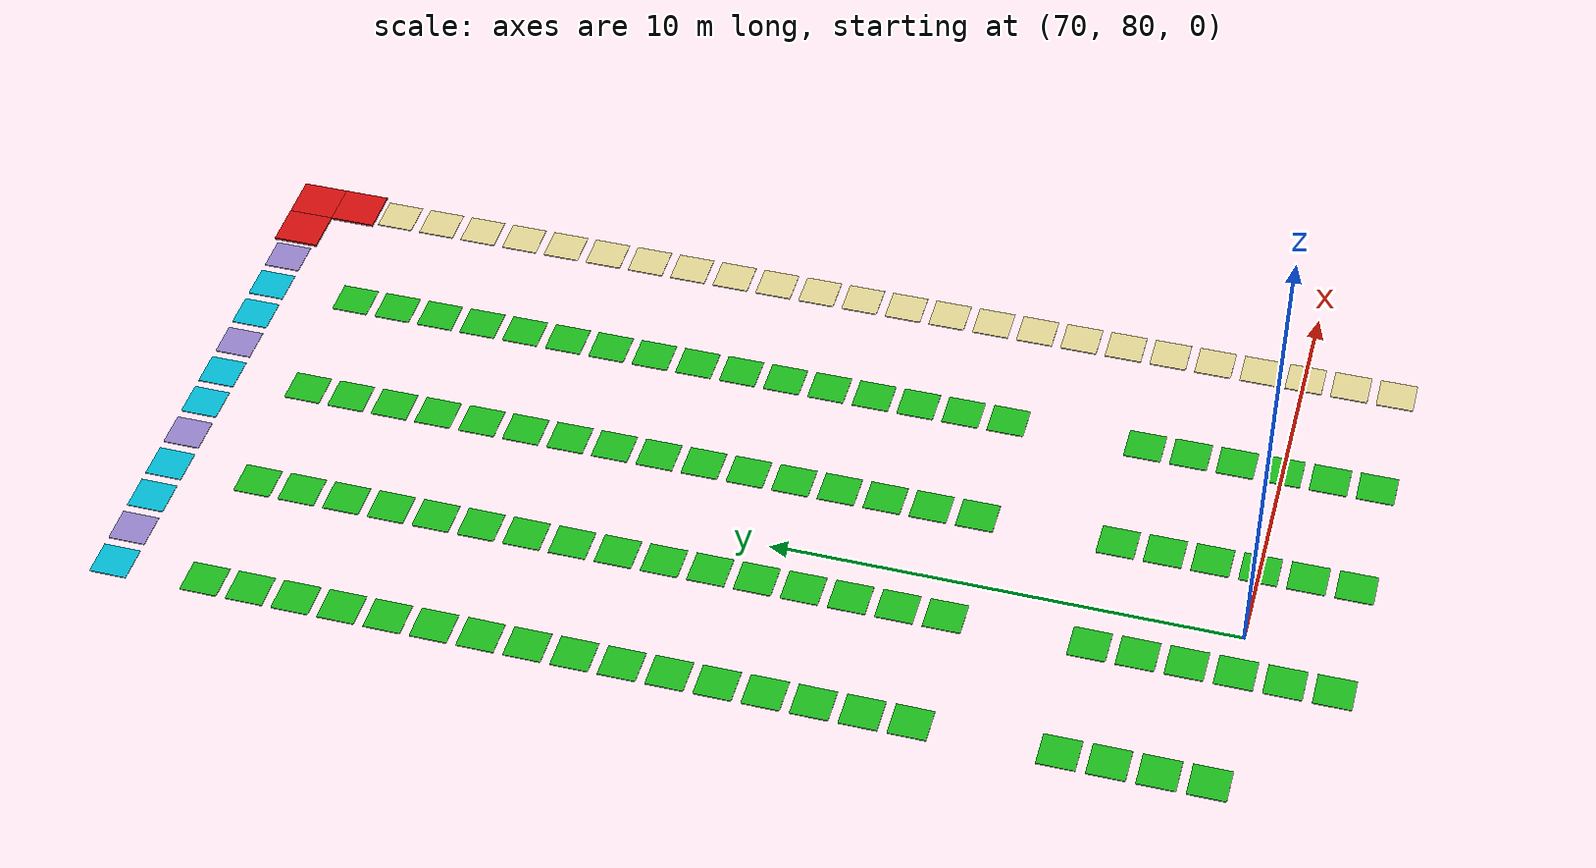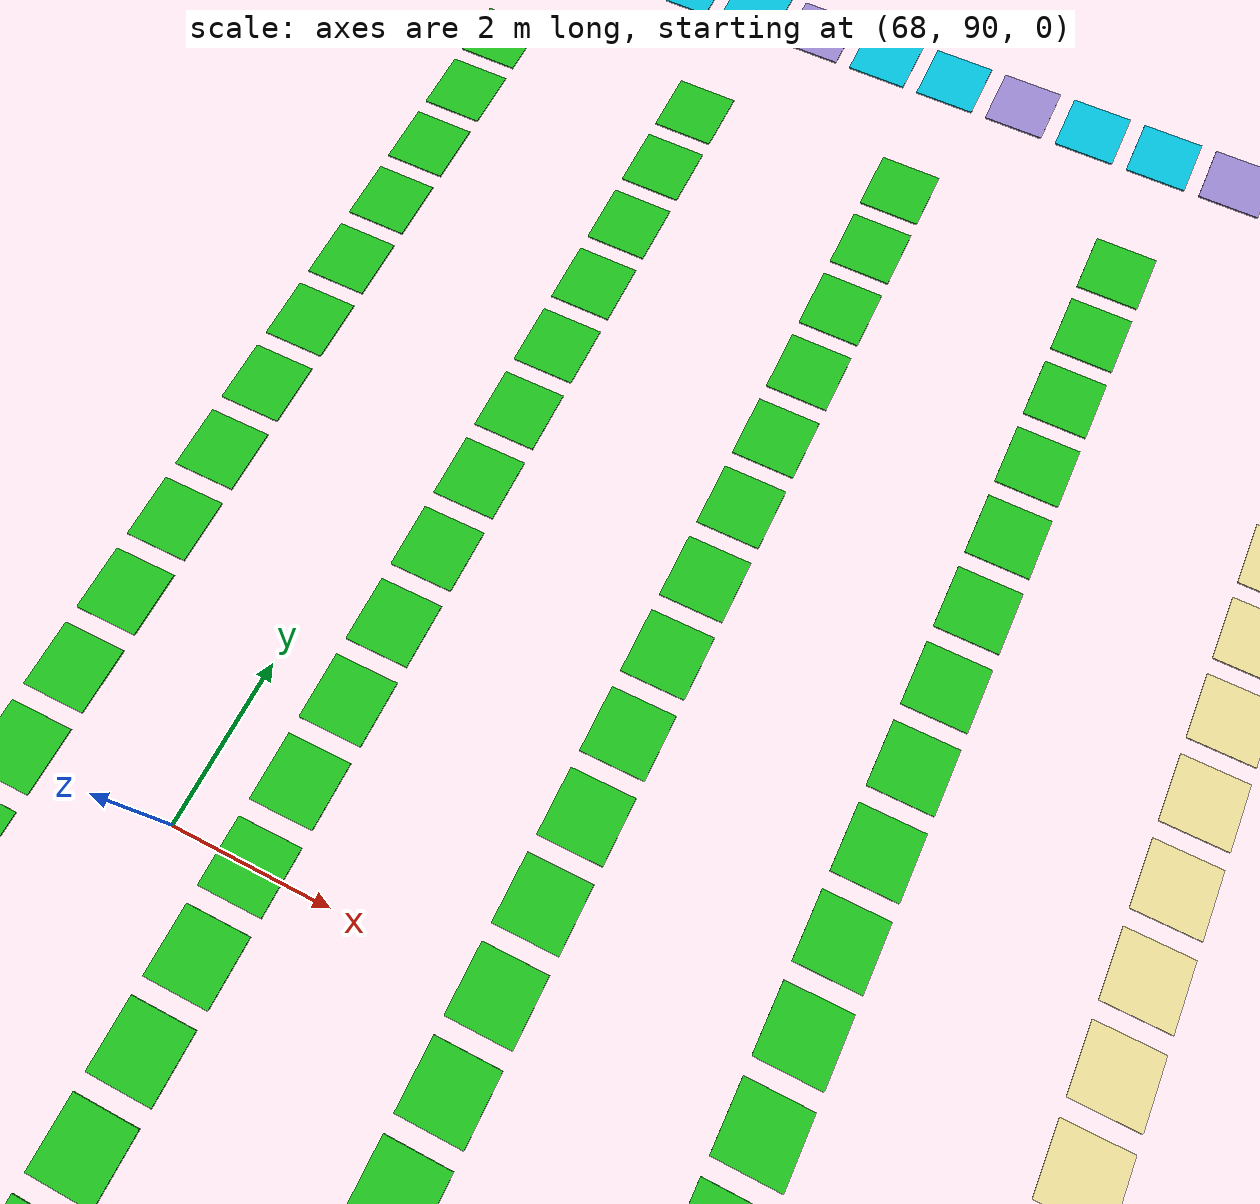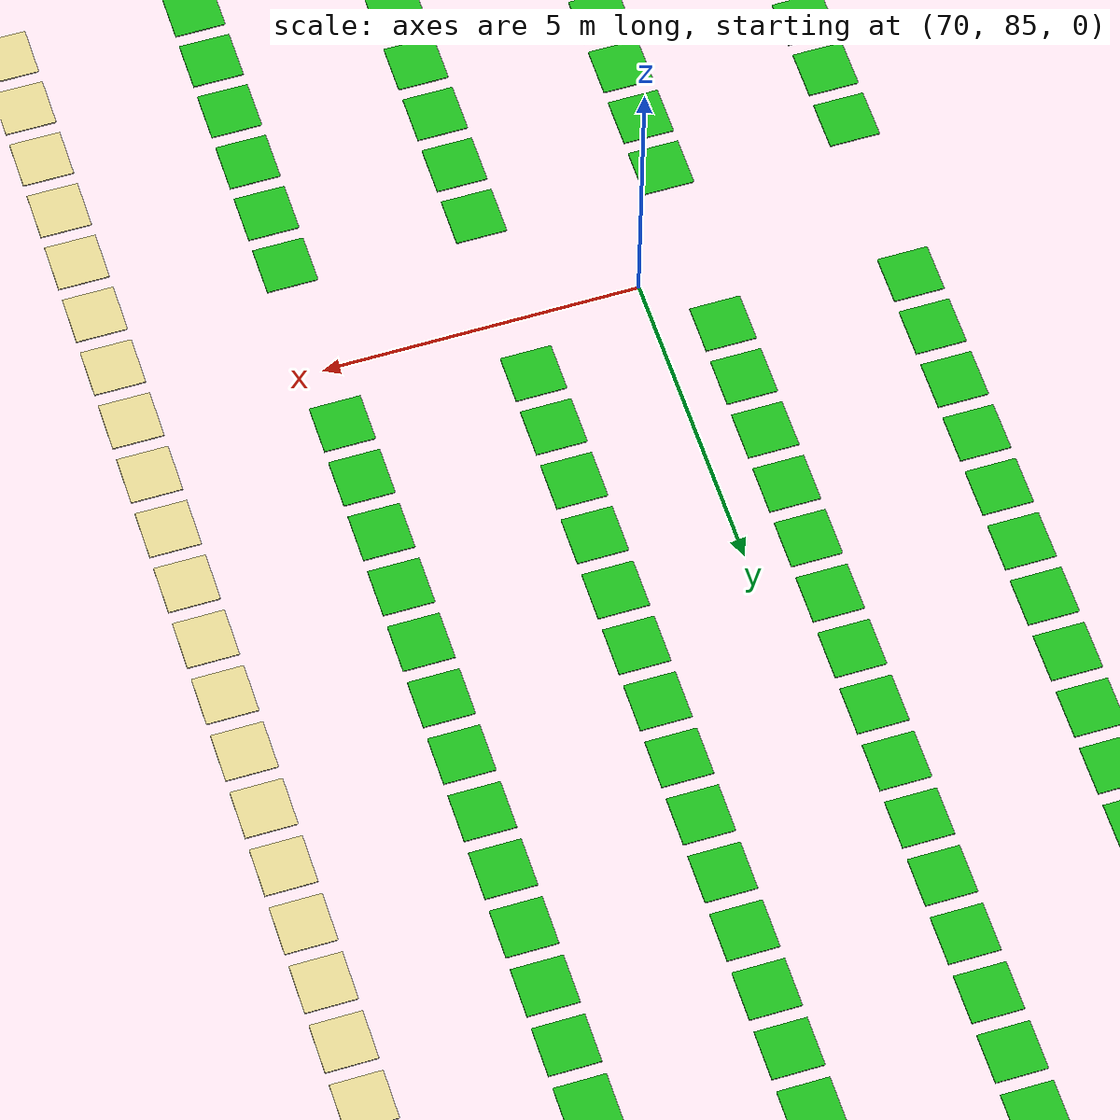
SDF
<sdf version="1.10">
 <world name="my_map">
  <model name="blocked_0007">
   <static>true</static>
   <pose>77.0
        103.0
        0.045
        0 0 0</pose>
   <link name="link">
    <visual name="visual">
     <geometry><box><size>1.0
                1.0
                0.05</size></box></geometry>
     <material><ambient>0.8 0.05 0.05 1</ambient><diffuse>0.8 0.05 0.05 1</diffuse></material>
    </visual>
   </link>
  </model>
  <model name="blocked_0010">
   <static>true</static>
   <pose>78.0
        102.0
        0.045
        0 0 0</pose>
   <link name="link">
    <visual name="visual">
     <geometry><box><size>1.0
                1.0
                0.05</size></box></geometry>
     <material><ambient>0.8 0.05 0.05 1</ambient><diffuse>0.8 0.05 0.05 1</diffuse></material>
    </visual>
   </link>
  </model>
  <model name="blocked_0011">
   <static>true</static>
   <pose>78.0
        103.0
        0.045
        0 0 0</pose>
   <link name="link">
    <visual name="visual">
     <geometry><box><size>1.0
                1.0
                0.05</size></box></geometry>
     <material><ambient>0.8 0.05 0.05 1</ambient><diffuse>0.8 0.05 0.05 1</diffuse></material>
    </visual>
   </link>
  </model>
  <model name="charging_044">
   <static>true</static>
   <pose>66.0
        103.0
        0.02
        0 0 0</pose>
   <link name="link">
    <visual name="visual">
     <geometry><box><size>0.8
                0.8
                0.02</size></box></geometry>
     <material><ambient>0.00 0.70 0.80 1</ambient><diffuse>0.00 0.70 0.80 1</diffuse></material>
    </visual>
   </link>
  </model>
  <model name="charge_queue_022">
   <static>true</static>
   <pose>67.0
        103.0
        0.02
        0 0 0</pose>
   <link name="link">
    <visual name="visual">
     <geometry><box><size>0.8
                0.8
                0.02</size></box></geometry>
     <material><ambient>0.56 0.49 0.76 1</ambient><diffuse>0.56 0.49 0.76 1</diffuse></material>
    </visual>
   </link>
  </model>
  <model name="charging_045">
   <static>true</static>
   <pose>68.0
        103.0
        0.02
        0 0 0</pose>
   <link name="link">
    <visual name="visual">
     <geometry><box><size>0.8
                0.8
                0.02</size></box></geometry>
     <material><ambient>0.00 0.70 0.80 1</ambient><diffuse>0.00 0.70 0.80 1</diffuse></material>
    </visual>
   </link>
  </model>
  <model name="charging_046">
   <static>true</static>
   <pose>69.0
        103.0
        0.02
        0 0 0</pose>
   <link name="link">
    <visual name="visual">
     <geometry><box><size>0.8
                0.8
                0.02</size></box></geometry>
     <material><ambient>0.00 0.70 0.80 1</ambient><diffuse>0.00 0.70 0.80 1</diffuse></material>
    </visual>
   </link>
  </model>
  <model name="charge_queue_023">
   <static>true</static>
   <pose>70.0
        103.0
        0.02
        0 0 0</pose>
   <link name="link">
    <visual name="visual">
     <geometry><box><size>0.8
                0.8
                0.02</size></box></geometry>
     <material><ambient>0.56 0.49 0.76 1</ambient><diffuse>0.56 0.49 0.76 1</diffuse></material>
    </visual>
   </link>
  </model>
  <model name="charging_047">
   <static>true</static>
   <pose>71.0
        103.0
        0.02
        0 0 0</pose>
   <link name="link">
    <visual name="visual">
     <geometry><box><size>0.8
                0.8
                0.02</size></box></geometry>
     <material><ambient>0.00 0.70 0.80 1</ambient><diffuse>0.00 0.70 0.80 1</diffuse></material>
    </visual>
   </link>
  </model>
  <model name="charging_048">
   <static>true</static>
   <pose>72.0
        103.0
        0.02
        0 0 0</pose>
   <link name="link">
    <visual name="visual">
     <geometry><box><size>0.8
                0.8
                0.02</size></box></geometry>
     <material><ambient>0.00 0.70 0.80 1</ambient><diffuse>0.00 0.70 0.80 1</diffuse></material>
    </visual>
   </link>
  </model>
  <model name="charge_queue_024">
   <static>true</static>
   <pose>73.0
        103.0
        0.02
        0 0 0</pose>
   <link name="link">
    <visual name="visual">
     <geometry><box><size>0.8
                0.8
                0.02</size></box></geometry>
     <material><ambient>0.56 0.49 0.76 1</ambient><diffuse>0.56 0.49 0.76 1</diffuse></material>
    </visual>
   </link>
  </model>
  <model name="charging_049">
   <static>true</static>
   <pose>74.0
        103.0
        0.02
        0 0 0</pose>
   <link name="link">
    <visual name="visual">
     <geometry><box><size>0.8
                0.8
                0.02</size></box></geometry>
     <material><ambient>0.00 0.70 0.80 1</ambient><diffuse>0.00 0.70 0.80 1</diffuse></material>
    </visual>
   </link>
  </model>
  <model name="charging_050">
   <static>true</static>
   <pose>75.0
        103.0
        0.02
        0 0 0</pose>
   <link name="link">
    <visual name="visual">
     <geometry><box><size>0.8
                0.8
                0.02</size></box></geometry>
     <material><ambient>0.00 0.70 0.80 1</ambient><diffuse>0.00 0.70 0.80 1</diffuse></material>
    </visual>
   </link>
  </model>
  <model name="charge_queue_025">
   <static>true</static>
   <pose>76.0
        103.0
        0.02
        0 0 0</pose>
   <link name="link">
    <visual name="visual">
     <geometry><box><size>0.8
                0.8
                0.02</size></box></geometry>
     <material><ambient>0.56 0.49 0.76 1</ambient><diffuse>0.56 0.49 0.76 1</diffuse></material>
    </visual>
   </link>
  </model>
  <model name="shelf_022">
   <static>true</static>
   <pose>66.0
        101.0
        0.02
        0 0 0</pose>
   <link name="link">
    <visual name="visual">
     <geometry><box><size>0.8
                0.8
                0.02</size></box></geometry>
     <material><ambient>0.10 0.70 0.10 1</ambient><diffuse>0.10 0.70 0.10 1</diffuse></material>
    </visual>
   </link>
  </model>
  <model name="shelf_023">
   <static>true</static>
   <pose>69.0
        101.0
        0.02
        0 0 0</pose>
   <link name="link">
    <visual name="visual">
     <geometry><box><size>0.8
                0.8
                0.02</size></box></geometry>
     <material><ambient>0.10 0.70 0.10 1</ambient><diffuse>0.10 0.70 0.10 1</diffuse></material>
    </visual>
   </link>
  </model>
  <model name="shelf_024">
   <static>true</static>
   <pose>72.0
        101.0
        0.02
        0 0 0</pose>
   <link name="link">
    <visual name="visual">
     <geometry><box><size>0.8
                0.8
                0.02</size></box></geometry>
     <material><ambient>0.10 0.70 0.10 1</ambient><diffuse>0.10 0.70 0.10 1</diffuse></material>
    </visual>
   </link>
  </model>
  <model name="shelf_025">
   <static>true</static>
   <pose>75.0
        101.0
        0.02
        0 0 0</pose>
   <link name="link">
    <visual name="visual">
     <geometry><box><size>0.8
                0.8
                0.02</size></box></geometry>
     <material><ambient>0.10 0.70 0.10 1</ambient><diffuse>0.10 0.70 0.10 1</diffuse></material>
    </visual>
   </link>
  </model>
  <model name="staging_002">
   <static>true</static>
   <pose>78.0
        101.0
        0.02
        0 0 0</pose>
   <link name="link">
    <visual name="visual">
     <geometry><box><size>0.8
                0.8
                0.02</size></box></geometry>
     <material><ambient>0.85 0.80 0.55 1</ambient><diffuse>0.85 0.80 0.55 1</diffuse></material>
    </visual>
   </link>
  </model>
  <model name="shelf_047">
   <static>true</static>
   <pose>66.0
        100.0
        0.02
        0 0 0</pose>
   <link name="link">
    <visual name="visual">
     <geometry><box><size>0.8
                0.8
                0.02</size></box></geometry>
     <material><ambient>0.10 0.70 0.10 1</ambient><diffuse>0.10 0.70 0.10 1</diffuse></material>
    </visual>
   </link>
  </model>
  <model name="shelf_048">
   <static>true</static>
   <pose>69.0
        100.0
        0.02
        0 0 0</pose>
   <link name="link">
    <visual name="visual">
     <geometry><box><size>0.8
                0.8
                0.02</size></box></geometry>
     <material><ambient>0.10 0.70 0.10 1</ambient><diffuse>0.10 0.70 0.10 1</diffuse></material>
    </visual>
   </link>
  </model>
  <model name="shelf_049">
   <static>true</static>
   <pose>72.0
        100.0
        0.02
        0 0 0</pose>
   <link name="link">
    <visual name="visual">
     <geometry><box><size>0.8
                0.8
                0.02</size></box></geometry>
     <material><ambient>0.10 0.70 0.10 1</ambient><diffuse>0.10 0.70 0.10 1</diffuse></material>
    </visual>
   </link>
  </model>
  <model name="shelf_050">
   <static>true</static>
   <pose>75.0
        100.0
        0.02
        0 0 0</pose>
   <link name="link">
    <visual name="visual">
     <geometry><box><size>0.8
                0.8
                0.02</size></box></geometry>
     <material><ambient>0.10 0.70 0.10 1</ambient><diffuse>0.10 0.70 0.10 1</diffuse></material>
    </visual>
   </link>
  </model>
  <model name="staging_004">
   <static>true</static>
   <pose>78.0
        100.0
        0.02
        0 0 0</pose>
   <link name="link">
    <visual name="visual">
     <geometry><box><size>0.8
                0.8
                0.02</size></box></geometry>
     <material><ambient>0.85 0.80 0.55 1</ambient><diffuse>0.85 0.80 0.55 1</diffuse></material>
    </visual>
   </link>
  </model>
  <model name="shelf_072">
   <static>true</static>
   <pose>66.0
        99.0
        0.02
        0 0 0</pose>
   <link name="link">
    <visual name="visual">
     <geometry><box><size>0.8
                0.8
                0.02</size></box></geometry>
     <material><ambient>0.10 0.70 0.10 1</ambient><diffuse>0.10 0.70 0.10 1</diffuse></material>
    </visual>
   </link>
  </model>
  <model name="shelf_073">
   <static>true</static>
   <pose>69.0
        99.0
        0.02
        0 0 0</pose>
   <link name="link">
    <visual name="visual">
     <geometry><box><size>0.8
                0.8
                0.02</size></box></geometry>
     <material><ambient>0.10 0.70 0.10 1</ambient><diffuse>0.10 0.70 0.10 1</diffuse></material>
    </visual>
   </link>
  </model>
  <model name="shelf_074">
   <static>true</static>
   <pose>72.0
        99.0
        0.02
        0 0 0</pose>
   <link name="link">
    <visual name="visual">
     <geometry><box><size>0.8
                0.8
                0.02</size></box></geometry>
     <material><ambient>0.10 0.70 0.10 1</ambient><diffuse>0.10 0.70 0.10 1</diffuse></material>
    </visual>
   </link>
  </model>
  <model name="shelf_075">
   <static>true</static>
   <pose>75.0
        99.0
        0.02
        0 0 0</pose>
   <link name="link">
    <visual name="visual">
     <geometry><box><size>0.8
                0.8
                0.02</size></box></geometry>
     <material><ambient>0.10 0.70 0.10 1</ambient><diffuse>0.10 0.70 0.10 1</diffuse></material>
    </visual>
   </link>
  </model>
  <model name="staging_006">
   <static>true</static>
   <pose>78.0
        99.0
        0.02
        0 0 0</pose>
   <link name="link">
    <visual name="visual">
     <geometry><box><size>0.8
                0.8
                0.02</size></box></geometry>
     <material><ambient>0.85 0.80 0.55 1</ambient><diffuse>0.85 0.80 0.55 1</diffuse></material>
    </visual>
   </link>
  </model>
  <model name="shelf_097">
   <static>true</static>
   <pose>66.0
        98.0
        0.02
        0 0 0</pose>
   <link name="link">
    <visual name="visual">
     <geometry><box><size>0.8
                0.8
                0.02</size></box></geometry>
     <material><ambient>0.10 0.70 0.10 1</ambient><diffuse>0.10 0.70 0.10 1</diffuse></material>
    </visual>
   </link>
  </model>
  <model name="shelf_098">
   <static>true</static>
   <pose>69.0
        98.0
        0.02
        0 0 0</pose>
   <link name="link">
    <visual name="visual">
     <geometry><box><size>0.8
                0.8
                0.02</size></box></geometry>
     <material><ambient>0.10 0.70 0.10 1</ambient><diffuse>0.10 0.70 0.10 1</diffuse></material>
    </visual>
   </link>
  </model>
  <model name="shelf_099">
   <static>true</static>
   <pose>72.0
        98.0
        0.02
        0 0 0</pose>
   <link name="link">
    <visual name="visual">
     <geometry><box><size>0.8
                0.8
                0.02</size></box></geometry>
     <material><ambient>0.10 0.70 0.10 1</ambient><diffuse>0.10 0.70 0.10 1</diffuse></material>
    </visual>
   </link>
  </model>
  <model name="shelf_100">
   <static>true</static>
   <pose>75.0
        98.0
        0.02
        0 0 0</pose>
   <link name="link">
    <visual name="visual">
     <geometry><box><size>0.8
                0.8
                0.02</size></box></geometry>
     <material><ambient>0.10 0.70 0.10 1</ambient><diffuse>0.10 0.70 0.10 1</diffuse></material>
    </visual>
   </link>
  </model>
  <model name="staging_008">
   <static>true</static>
   <pose>78.0
        98.0
        0.02
        0 0 0</pose>
   <link name="link">
    <visual name="visual">
     <geometry><box><size>0.8
                0.8
                0.02</size></box></geometry>
     <material><ambient>0.85 0.80 0.55 1</ambient><diffuse>0.85 0.80 0.55 1</diffuse></material>
    </visual>
   </link>
  </model>
  <model name="shelf_122">
   <static>true</static>
   <pose>66.0
        97.0
        0.02
        0 0 0</pose>
   <link name="link">
    <visual name="visual">
     <geometry><box><size>0.8
                0.8
                0.02</size></box></geometry>
     <material><ambient>0.10 0.70 0.10 1</ambient><diffuse>0.10 0.70 0.10 1</diffuse></material>
    </visual>
   </link>
  </model>
  <model name="shelf_123">
   <static>true</static>
   <pose>69.0
        97.0
        0.02
        0 0 0</pose>
   <link name="link">
    <visual name="visual">
     <geometry><box><size>0.8
                0.8
                0.02</size></box></geometry>
     <material><ambient>0.10 0.70 0.10 1</ambient><diffuse>0.10 0.70 0.10 1</diffuse></material>
    </visual>
   </link>
  </model>
  <model name="shelf_124">
   <static>true</static>
   <pose>72.0
        97.0
        0.02
        0 0 0</pose>
   <link name="link">
    <visual name="visual">
     <geometry><box><size>0.8
                0.8
                0.02</size></box></geometry>
     <material><ambient>0.10 0.70 0.10 1</ambient><diffuse>0.10 0.70 0.10 1</diffuse></material>
    </visual>
   </link>
  </model>
  <model name="shelf_125">
   <static>true</static>
   <pose>75.0
        97.0
        0.02
        0 0 0</pose>
   <link name="link">
    <visual name="visual">
     <geometry><box><size>0.8
                0.8
                0.02</size></box></geometry>
     <material><ambient>0.10 0.70 0.10 1</ambient><diffuse>0.10 0.70 0.10 1</diffuse></material>
    </visual>
   </link>
  </model>
  <model name="staging_010">
   <static>true</static>
   <pose>78.0
        97.0
        0.02
        0 0 0</pose>
   <link name="link">
    <visual name="visual">
     <geometry><box><size>0.8
                0.8
                0.02</size></box></geometry>
     <material><ambient>0.85 0.80 0.55 1</ambient><diffuse>0.85 0.80 0.55 1</diffuse></material>
    </visual>
   </link>
  </model>
  <model name="shelf_147">
   <static>true</static>
   <pose>66.0
        96.0
        0.02
        0 0 0</pose>
   <link name="link">
    <visual name="visual">
     <geometry><box><size>0.8
                0.8
                0.02</size></box></geometry>
     <material><ambient>0.10 0.70 0.10 1</ambient><diffuse>0.10 0.70 0.10 1</diffuse></material>
    </visual>
   </link>
  </model>
  <model name="shelf_148">
   <static>true</static>
   <pose>69.0
        96.0
        0.02
        0 0 0</pose>
   <link name="link">
    <visual name="visual">
     <geometry><box><size>0.8
                0.8
                0.02</size></box></geometry>
     <material><ambient>0.10 0.70 0.10 1</ambient><diffuse>0.10 0.70 0.10 1</diffuse></material>
    </visual>
   </link>
  </model>
  <model name="shelf_149">
   <static>true</static>
   <pose>72.0
        96.0
        0.02
        0 0 0</pose>
   <link name="link">
    <visual name="visual">
     <geometry><box><size>0.8
                0.8
                0.02</size></box></geometry>
     <material><ambient>0.10 0.70 0.10 1</ambient><diffuse>0.10 0.70 0.10 1</diffuse></material>
    </visual>
   </link>
  </model>
  <model name="shelf_150">
   <static>true</static>
   <pose>75.0
        96.0
        0.02
        0 0 0</pose>
   <link name="link">
    <visual name="visual">
     <geometry><box><size>0.8
                0.8
                0.02</size></box></geometry>
     <material><ambient>0.10 0.70 0.10 1</ambient><diffuse>0.10 0.70 0.10 1</diffuse></material>
    </visual>
   </link>
  </model>
  <model name="staging_012">
   <static>true</static>
   <pose>78.0
        96.0
        0.02
        0 0 0</pose>
   <link name="link">
    <visual name="visual">
     <geometry><box><size>0.8
                0.8
                0.02</size></box></geometry>
     <material><ambient>0.85 0.80 0.55 1</ambient><diffuse>0.85 0.80 0.55 1</diffuse></material>
    </visual>
   </link>
  </model>
  <model name="shelf_172">
   <static>true</static>
   <pose>66.0
        95.0
        0.02
        0 0 0</pose>
   <link name="link">
    <visual name="visual">
     <geometry><box><size>0.8
                0.8
                0.02</size></box></geometry>
     <material><ambient>0.10 0.70 0.10 1</ambient><diffuse>0.10 0.70 0.10 1</diffuse></material>
    </visual>
   </link>
  </model>
  <model name="shelf_173">
   <static>true</static>
   <pose>69.0
        95.0
        0.02
        0 0 0</pose>
   <link name="link">
    <visual name="visual">
     <geometry><box><size>0.8
                0.8
                0.02</size></box></geometry>
     <material><ambient>0.10 0.70 0.10 1</ambient><diffuse>0.10 0.70 0.10 1</diffuse></material>
    </visual>
   </link>
  </model>
  <model name="shelf_174">
   <static>true</static>
   <pose>72.0
        95.0
        0.02
        0 0 0</pose>
   <link name="link">
    <visual name="visual">
     <geometry><box><size>0.8
                0.8
                0.02</size></box></geometry>
     <material><ambient>0.10 0.70 0.10 1</ambient><diffuse>0.10 0.70 0.10 1</diffuse></material>
    </visual>
   </link>
  </model>
  <model name="shelf_175">
   <static>true</static>
   <pose>75.0
        95.0
        0.02
        0 0 0</pose>
   <link name="link">
    <visual name="visual">
     <geometry><box><size>0.8
                0.8
                0.02</size></box></geometry>
     <material><ambient>0.10 0.70 0.10 1</ambient><diffuse>0.10 0.70 0.10 1</diffuse></material>
    </visual>
   </link>
  </model>
  <model name="staging_014">
   <static>true</static>
   <pose>78.0
        95.0
        0.02
        0 0 0</pose>
   <link name="link">
    <visual name="visual">
     <geometry><box><size>0.8
                0.8
                0.02</size></box></geometry>
     <material><ambient>0.85 0.80 0.55 1</ambient><diffuse>0.85 0.80 0.55 1</diffuse></material>
    </visual>
   </link>
  </model>
  <model name="shelf_197">
   <static>true</static>
   <pose>66.0
        94.0
        0.02
        0 0 0</pose>
   <link name="link">
    <visual name="visual">
     <geometry><box><size>0.8
                0.8
                0.02</size></box></geometry>
     <material><ambient>0.10 0.70 0.10 1</ambient><diffuse>0.10 0.70 0.10 1</diffuse></material>
    </visual>
   </link>
  </model>
  <model name="shelf_198">
   <static>true</static>
   <pose>69.0
        94.0
        0.02
        0 0 0</pose>
   <link name="link">
    <visual name="visual">
     <geometry><box><size>0.8
                0.8
                0.02</size></box></geometry>
     <material><ambient>0.10 0.70 0.10 1</ambient><diffuse>0.10 0.70 0.10 1</diffuse></material>
    </visual>
   </link>
  </model>
  <model name="shelf_199">
   <static>true</static>
   <pose>72.0
        94.0
        0.02
        0 0 0</pose>
   <link name="link">
    <visual name="visual">
     <geometry><box><size>0.8
                0.8
                0.02</size></box></geometry>
     <material><ambient>0.10 0.70 0.10 1</ambient><diffuse>0.10 0.70 0.10 1</diffuse></material>
    </visual>
   </link>
  </model>
  <model name="shelf_200">
   <static>true</static>
   <pose>75.0
        94.0
        0.02
        0 0 0</pose>
   <link name="link">
    <visual name="visual">
     <geometry><box><size>0.8
                0.8
                0.02</size></box></geometry>
     <material><ambient>0.10 0.70 0.10 1</ambient><diffuse>0.10 0.70 0.10 1</diffuse></material>
    </visual>
   </link>
  </model>
  <model name="staging_016">
   <static>true</static>
   <pose>78.0
        94.0
        0.02
        0 0 0</pose>
   <link name="link">
    <visual name="visual">
     <geometry><box><size>0.8
                0.8
                0.02</size></box></geometry>
     <material><ambient>0.85 0.80 0.55 1</ambient><diffuse>0.85 0.80 0.55 1</diffuse></material>
    </visual>
   </link>
  </model>
  <model name="shelf_222">
   <static>true</static>
   <pose>66.0
        93.0
        0.02
        0 0 0</pose>
   <link name="link">
    <visual name="visual">
     <geometry><box><size>0.8
                0.8
                0.02</size></box></geometry>
     <material><ambient>0.10 0.70 0.10 1</ambient><diffuse>0.10 0.70 0.10 1</diffuse></material>
    </visual>
   </link>
  </model>
  <model name="shelf_223">
   <static>true</static>
   <pose>69.0
        93.0
        0.02
        0 0 0</pose>
   <link name="link">
    <visual name="visual">
     <geometry><box><size>0.8
                0.8
                0.02</size></box></geometry>
     <material><ambient>0.10 0.70 0.10 1</ambient><diffuse>0.10 0.70 0.10 1</diffuse></material>
    </visual>
   </link>
  </model>
  <model name="shelf_224">
   <static>true</static>
   <pose>72.0
        93.0
        0.02
        0 0 0</pose>
   <link name="link">
    <visual name="visual">
     <geometry><box><size>0.8
                0.8
                0.02</size></box></geometry>
     <material><ambient>0.10 0.70 0.10 1</ambient><diffuse>0.10 0.70 0.10 1</diffuse></material>
    </visual>
   </link>
  </model>
  <model name="shelf_225">
   <static>true</static>
   <pose>75.0
        93.0
        0.02
        0 0 0</pose>
   <link name="link">
    <visual name="visual">
     <geometry><box><size>0.8
                0.8
                0.02</size></box></geometry>
     <material><ambient>0.10 0.70 0.10 1</ambient><diffuse>0.10 0.70 0.10 1</diffuse></material>
    </visual>
   </link>
  </model>
  <model name="staging_018">
   <static>true</static>
   <pose>78.0
        93.0
        0.02
        0 0 0</pose>
   <link name="link">
    <visual name="visual">
     <geometry><box><size>0.8
                0.8
                0.02</size></box></geometry>
     <material><ambient>0.85 0.80 0.55 1</ambient><diffuse>0.85 0.80 0.55 1</diffuse></material>
    </visual>
   </link>
  </model>
  <model name="shelf_247">
   <static>true</static>
   <pose>66.0
        92.0
        0.02
        0 0 0</pose>
   <link name="link">
    <visual name="visual">
     <geometry><box><size>0.8
                0.8
                0.02</size></box></geometry>
     <material><ambient>0.10 0.70 0.10 1</ambient><diffuse>0.10 0.70 0.10 1</diffuse></material>
    </visual>
   </link>
  </model>
  <model name="shelf_248">
   <static>true</static>
   <pose>69.0
        92.0
        0.02
        0 0 0</pose>
   <link name="link">
    <visual name="visual">
     <geometry><box><size>0.8
                0.8
                0.02</size></box></geometry>
     <material><ambient>0.10 0.70 0.10 1</ambient><diffuse>0.10 0.70 0.10 1</diffuse></material>
    </visual>
   </link>
  </model>
  <model name="shelf_249">
   <static>true</static>
   <pose>72.0
        92.0
        0.02
        0 0 0</pose>
   <link name="link">
    <visual name="visual">
     <geometry><box><size>0.8
                0.8
                0.02</size></box></geometry>
     <material><ambient>0.10 0.70 0.10 1</ambient><diffuse>0.10 0.70 0.10 1</diffuse></material>
    </visual>
   </link>
  </model>
  <model name="shelf_250">
   <static>true</static>
   <pose>75.0
        92.0
        0.02
        0 0 0</pose>
   <link name="link">
    <visual name="visual">
     <geometry><box><size>0.8
                0.8
                0.02</size></box></geometry>
     <material><ambient>0.10 0.70 0.10 1</ambient><diffuse>0.10 0.70 0.10 1</diffuse></material>
    </visual>
   </link>
  </model>
  <model name="staging_020">
   <static>true</static>
   <pose>78.0
        92.0
        0.02
        0 0 0</pose>
   <link name="link">
    <visual name="visual">
     <geometry><box><size>0.8
                0.8
                0.02</size></box></geometry>
     <material><ambient>0.85 0.80 0.55 1</ambient><diffuse>0.85 0.80 0.55 1</diffuse></material>
    </visual>
   </link>
  </model>
  <model name="shelf_272">
   <static>true</static>
   <pose>66.0
        91.0
        0.02
        0 0 0</pose>
   <link name="link">
    <visual name="visual">
     <geometry><box><size>0.8
                0.8
                0.02</size></box></geometry>
     <material><ambient>0.10 0.70 0.10 1</ambient><diffuse>0.10 0.70 0.10 1</diffuse></material>
    </visual>
   </link>
  </model>
  <model name="shelf_273">
   <static>true</static>
   <pose>69.0
        91.0
        0.02
        0 0 0</pose>
   <link name="link">
    <visual name="visual">
     <geometry><box><size>0.8
                0.8
                0.02</size></box></geometry>
     <material><ambient>0.10 0.70 0.10 1</ambient><diffuse>0.10 0.70 0.10 1</diffuse></material>
    </visual>
   </link>
  </model>
  <model name="shelf_274">
   <static>true</static>
   <pose>72.0
        91.0
        0.02
        0 0 0</pose>
   <link name="link">
    <visual name="visual">
     <geometry><box><size>0.8
                0.8
                0.02</size></box></geometry>
     <material><ambient>0.10 0.70 0.10 1</ambient><diffuse>0.10 0.70 0.10 1</diffuse></material>
    </visual>
   </link>
  </model>
  <model name="shelf_275">
   <static>true</static>
   <pose>75.0
        91.0
        0.02
        0 0 0</pose>
   <link name="link">
    <visual name="visual">
     <geometry><box><size>0.8
                0.8
                0.02</size></box></geometry>
     <material><ambient>0.10 0.70 0.10 1</ambient><diffuse>0.10 0.70 0.10 1</diffuse></material>
    </visual>
   </link>
  </model>
  <model name="staging_022">
   <static>true</static>
   <pose>78.0
        91.0
        0.02
        0 0 0</pose>
   <link name="link">
    <visual name="visual">
     <geometry><box><size>0.8
                0.8
                0.02</size></box></geometry>
     <material><ambient>0.85 0.80 0.55 1</ambient><diffuse>0.85 0.80 0.55 1</diffuse></material>
    </visual>
   </link>
  </model>
  <model name="shelf_297">
   <static>true</static>
   <pose>66.0
        90.0
        0.02
        0 0 0</pose>
   <link name="link">
    <visual name="visual">
     <geometry><box><size>0.8
                0.8
                0.02</size></box></geometry>
     <material><ambient>0.10 0.70 0.10 1</ambient><diffuse>0.10 0.70 0.10 1</diffuse></material>
    </visual>
   </link>
  </model>
  <model name="shelf_298">
   <static>true</static>
   <pose>69.0
        90.0
        0.02
        0 0 0</pose>
   <link name="link">
    <visual name="visual">
     <geometry><box><size>0.8
                0.8
                0.02</size></box></geometry>
     <material><ambient>0.10 0.70 0.10 1</ambient><diffuse>0.10 0.70 0.10 1</diffuse></material>
    </visual>
   </link>
  </model>
  <model name="shelf_299">
   <static>true</static>
   <pose>72.0
        90.0
        0.02
        0 0 0</pose>
   <link name="link">
    <visual name="visual">
     <geometry><box><size>0.8
                0.8
                0.02</size></box></geometry>
     <material><ambient>0.10 0.70 0.10 1</ambient><diffuse>0.10 0.70 0.10 1</diffuse></material>
    </visual>
   </link>
  </model>
  <model name="shelf_300">
   <static>true</static>
   <pose>75.0
        90.0
        0.02
        0 0 0</pose>
   <link name="link">
    <visual name="visual">
     <geometry><box><size>0.8
                0.8
                0.02</size></box></geometry>
     <material><ambient>0.10 0.70 0.10 1</ambient><diffuse>0.10 0.70 0.10 1</diffuse></material>
    </visual>
   </link>
  </model>
  <model name="staging_024">
   <static>true</static>
   <pose>78.0
        90.0
        0.02
        0 0 0</pose>
   <link name="link">
    <visual name="visual">
     <geometry><box><size>0.8
                0.8
                0.02</size></box></geometry>
     <material><ambient>0.85 0.80 0.55 1</ambient><diffuse>0.85 0.80 0.55 1</diffuse></material>
    </visual>
   </link>
  </model>
  <model name="shelf_322">
   <static>true</static>
   <pose>66.0
        89.0
        0.02
        0 0 0</pose>
   <link name="link">
    <visual name="visual">
     <geometry><box><size>0.8
                0.8
                0.02</size></box></geometry>
     <material><ambient>0.10 0.70 0.10 1</ambient><diffuse>0.10 0.70 0.10 1</diffuse></material>
    </visual>
   </link>
  </model>
  <model name="shelf_323">
   <static>true</static>
   <pose>69.0
        89.0
        0.02
        0 0 0</pose>
   <link name="link">
    <visual name="visual">
     <geometry><box><size>0.8
                0.8
                0.02</size></box></geometry>
     <material><ambient>0.10 0.70 0.10 1</ambient><diffuse>0.10 0.70 0.10 1</diffuse></material>
    </visual>
   </link>
  </model>
  <model name="shelf_324">
   <static>true</static>
   <pose>72.0
        89.0
        0.02
        0 0 0</pose>
   <link name="link">
    <visual name="visual">
     <geometry><box><size>0.8
                0.8
                0.02</size></box></geometry>
     <material><ambient>0.10 0.70 0.10 1</ambient><diffuse>0.10 0.70 0.10 1</diffuse></material>
    </visual>
   </link>
  </model>
  <model name="shelf_325">
   <static>true</static>
   <pose>75.0
        89.0
        0.02
        0 0 0</pose>
   <link name="link">
    <visual name="visual">
     <geometry><box><size>0.8
                0.8
                0.02</size></box></geometry>
     <material><ambient>0.10 0.70 0.10 1</ambient><diffuse>0.10 0.70 0.10 1</diffuse></material>
    </visual>
   </link>
  </model>
  <model name="staging_026">
   <static>true</static>
   <pose>78.0
        89.0
        0.02
        0 0 0</pose>
   <link name="link">
    <visual name="visual">
     <geometry><box><size>0.8
                0.8
                0.02</size></box></geometry>
     <material><ambient>0.85 0.80 0.55 1</ambient><diffuse>0.85 0.80 0.55 1</diffuse></material>
    </visual>
   </link>
  </model>
  <model name="shelf_347">
   <static>true</static>
   <pose>66.0
        88.0
        0.02
        0 0 0</pose>
   <link name="link">
    <visual name="visual">
     <geometry><box><size>0.8
                0.8
                0.02</size></box></geometry>
     <material><ambient>0.10 0.70 0.10 1</ambient><diffuse>0.10 0.70 0.10 1</diffuse></material>
    </visual>
   </link>
  </model>
  <model name="shelf_348">
   <static>true</static>
   <pose>69.0
        88.0
        0.02
        0 0 0</pose>
   <link name="link">
    <visual name="visual">
     <geometry><box><size>0.8
                0.8
                0.02</size></box></geometry>
     <material><ambient>0.10 0.70 0.10 1</ambient><diffuse>0.10 0.70 0.10 1</diffuse></material>
    </visual>
   </link>
  </model>
  <model name="shelf_349">
   <static>true</static>
   <pose>72.0
        88.0
        0.02
        0 0 0</pose>
   <link name="link">
    <visual name="visual">
     <geometry><box><size>0.8
                0.8
                0.02</size></box></geometry>
     <material><ambient>0.10 0.70 0.10 1</ambient><diffuse>0.10 0.70 0.10 1</diffuse></material>
    </visual>
   </link>
  </model>
  <model name="shelf_350">
   <static>true</static>
   <pose>75.0
        88.0
        0.02
        0 0 0</pose>
   <link name="link">
    <visual name="visual">
     <geometry><box><size>0.8
                0.8
                0.02</size></box></geometry>
     <material><ambient>0.10 0.70 0.10 1</ambient><diffuse>0.10 0.70 0.10 1</diffuse></material>
    </visual>
   </link>
  </model>
  <model name="staging_028">
   <static>true</static>
   <pose>78.0
        88.0
        0.02
        0 0 0</pose>
   <link name="link">
    <visual name="visual">
     <geometry><box><size>0.8
                0.8
                0.02</size></box></geometry>
     <material><ambient>0.85 0.80 0.55 1</ambient><diffuse>0.85 0.80 0.55 1</diffuse></material>
    </visual>
   </link>
  </model>
  <model name="shelf_372">
   <static>true</static>
   <pose>66.0
        87.0
        0.02
        0 0 0</pose>
   <link name="link">
    <visual name="visual">
     <geometry><box><size>0.8
                0.8
                0.02</size></box></geometry>
     <material><ambient>0.10 0.70 0.10 1</ambient><diffuse>0.10 0.70 0.10 1</diffuse></material>
    </visual>
   </link>
  </model>
  <model name="shelf_373">
   <static>true</static>
   <pose>69.0
        87.0
        0.02
        0 0 0</pose>
   <link name="link">
    <visual name="visual">
     <geometry><box><size>0.8
                0.8
                0.02</size></box></geometry>
     <material><ambient>0.10 0.70 0.10 1</ambient><diffuse>0.10 0.70 0.10 1</diffuse></material>
    </visual>
   </link>
  </model>
  <model name="shelf_374">
   <static>true</static>
   <pose>72.0
        87.0
        0.02
        0 0 0</pose>
   <link name="link">
    <visual name="visual">
     <geometry><box><size>0.8
                0.8
                0.02</size></box></geometry>
     <material><ambient>0.10 0.70 0.10 1</ambient><diffuse>0.10 0.70 0.10 1</diffuse></material>
    </visual>
   </link>
  </model>
  <model name="shelf_375">
   <static>true</static>
   <pose>75.0
        87.0
        0.02
        0 0 0</pose>
   <link name="link">
    <visual name="visual">
     <geometry><box><size>0.8
                0.8
                0.02</size></box></geometry>
     <material><ambient>0.10 0.70 0.10 1</ambient><diffuse>0.10 0.70 0.10 1</diffuse></material>
    </visual>
   </link>
  </model>
  <model name="staging_030">
   <static>true</static>
   <pose>78.0
        87.0
        0.02
        0 0 0</pose>
   <link name="link">
    <visual name="visual">
     <geometry><box><size>0.8
                0.8
                0.02</size></box></geometry>
     <material><ambient>0.85 0.80 0.55 1</ambient><diffuse>0.85 0.80 0.55 1</diffuse></material>
    </visual>
   </link>
  </model>
  <model name="shelf_397">
   <static>true</static>
   <pose>66.0
        86.0
        0.02
        0 0 0</pose>
   <link name="link">
    <visual name="visual">
     <geometry><box><size>0.8
                0.8
                0.02</size></box></geometry>
     <material><ambient>0.10 0.70 0.10 1</ambient><diffuse>0.10 0.70 0.10 1</diffuse></material>
    </visual>
   </link>
  </model>
  <model name="shelf_398">
   <static>true</static>
   <pose>69.0
        86.0
        0.02
        0 0 0</pose>
   <link name="link">
    <visual name="visual">
     <geometry><box><size>0.8
                0.8
                0.02</size></box></geometry>
     <material><ambient>0.10 0.70 0.10 1</ambient><diffuse>0.10 0.70 0.10 1</diffuse></material>
    </visual>
   </link>
  </model>
  <model name="shelf_399">
   <static>true</static>
   <pose>72.0
        86.0
        0.02
        0 0 0</pose>
   <link name="link">
    <visual name="visual">
     <geometry><box><size>0.8
                0.8
                0.02</size></box></geometry>
     <material><ambient>0.10 0.70 0.10 1</ambient><diffuse>0.10 0.70 0.10 1</diffuse></material>
    </visual>
   </link>
  </model>
  <model name="shelf_400">
   <static>true</static>
   <pose>75.0
        86.0
        0.02
        0 0 0</pose>
   <link name="link">
    <visual name="visual">
     <geometry><box><size>0.8
                0.8
                0.02</size></box></geometry>
     <material><ambient>0.10 0.70 0.10 1</ambient><diffuse>0.10 0.70 0.10 1</diffuse></material>
    </visual>
   </link>
  </model>
  <model name="staging_032">
   <static>true</static>
   <pose>78.0
        86.0
        0.02
        0 0 0</pose>
   <link name="link">
    <visual name="visual">
     <geometry><box><size>0.8
                0.8
                0.02</size></box></geometry>
     <material><ambient>0.85 0.80 0.55 1</ambient><diffuse>0.85 0.80 0.55 1</diffuse></material>
    </visual>
   </link>
  </model>
  <model name="staging_034">
   <static>true</static>
   <pose>78.0
        85.0
        0.02
        0 0 0</pose>
   <link name="link">
    <visual name="visual">
     <geometry><box><size>0.8
                0.8
                0.02</size></box></geometry>
     <material><ambient>0.85 0.80 0.55 1</ambient><diffuse>0.85 0.80 0.55 1</diffuse></material>
    </visual>
   </link>
  </model>
  <model name="staging_036">
   <static>true</static>
   <pose>78.0
        84.0
        0.02
        0 0 0</pose>
   <link name="link">
    <visual name="visual">
     <geometry><box><size>0.8
                0.8
                0.02</size></box></geometry>
     <material><ambient>0.85 0.80 0.55 1</ambient><diffuse>0.85 0.80 0.55 1</diffuse></material>
    </visual>
   </link>
  </model>
  <model name="shelf_422">
   <static>true</static>
   <pose>66.0
        83.0
        0.02
        0 0 0</pose>
   <link name="link">
    <visual name="visual">
     <geometry><box><size>0.8
                0.8
                0.02</size></box></geometry>
     <material><ambient>0.10 0.70 0.10 1</ambient><diffuse>0.10 0.70 0.10 1</diffuse></material>
    </visual>
   </link>
  </model>
  <model name="shelf_423">
   <static>true</static>
   <pose>69.0
        83.0
        0.02
        0 0 0</pose>
   <link name="link">
    <visual name="visual">
     <geometry><box><size>0.8
                0.8
                0.02</size></box></geometry>
     <material><ambient>0.10 0.70 0.10 1</ambient><diffuse>0.10 0.70 0.10 1</diffuse></material>
    </visual>
   </link>
  </model>
  <model name="shelf_424">
   <static>true</static>
   <pose>72.0
        83.0
        0.02
        0 0 0</pose>
   <link name="link">
    <visual name="visual">
     <geometry><box><size>0.8
                0.8
                0.02</size></box></geometry>
     <material><ambient>0.10 0.70 0.10 1</ambient><diffuse>0.10 0.70 0.10 1</diffuse></material>
    </visual>
   </link>
  </model>
  <model name="shelf_425">
   <static>true</static>
   <pose>75.0
        83.0
        0.02
        0 0 0</pose>
   <link name="link">
    <visual name="visual">
     <geometry><box><size>0.8
                0.8
                0.02</size></box></geometry>
     <material><ambient>0.10 0.70 0.10 1</ambient><diffuse>0.10 0.70 0.10 1</diffuse></material>
    </visual>
   </link>
  </model>
  <model name="staging_038">
   <static>true</static>
   <pose>78.0
        83.0
        0.02
        0 0 0</pose>
   <link name="link">
    <visual name="visual">
     <geometry><box><size>0.8
                0.8
                0.02</size></box></geometry>
     <material><ambient>0.85 0.80 0.55 1</ambient><diffuse>0.85 0.80 0.55 1</diffuse></material>
    </visual>
   </link>
  </model>
  <model name="shelf_447">
   <static>true</static>
   <pose>66.0
        82.0
        0.02
        0 0 0</pose>
   <link name="link">
    <visual name="visual">
     <geometry><box><size>0.8
                0.8
                0.02</size></box></geometry>
     <material><ambient>0.10 0.70 0.10 1</ambient><diffuse>0.10 0.70 0.10 1</diffuse></material>
    </visual>
   </link>
  </model>
  <model name="shelf_448">
   <static>true</static>
   <pose>69.0
        82.0
        0.02
        0 0 0</pose>
   <link name="link">
    <visual name="visual">
     <geometry><box><size>0.8
                0.8
                0.02</size></box></geometry>
     <material><ambient>0.10 0.70 0.10 1</ambient><diffuse>0.10 0.70 0.10 1</diffuse></material>
    </visual>
   </link>
  </model>
  <model name="shelf_449">
   <static>true</static>
   <pose>72.0
        82.0
        0.02
        0 0 0</pose>
   <link name="link">
    <visual name="visual">
     <geometry><box><size>0.8
                0.8
                0.02</size></box></geometry>
     <material><ambient>0.10 0.70 0.10 1</ambient><diffuse>0.10 0.70 0.10 1</diffuse></material>
    </visual>
   </link>
  </model>
  <model name="shelf_450">
   <static>true</static>
   <pose>75.0
        82.0
        0.02
        0 0 0</pose>
   <link name="link">
    <visual name="visual">
     <geometry><box><size>0.8
                0.8
                0.02</size></box></geometry>
     <material><ambient>0.10 0.70 0.10 1</ambient><diffuse>0.10 0.70 0.10 1</diffuse></material>
    </visual>
   </link>
  </model>
  <model name="staging_040">
   <static>true</static>
   <pose>78.0
        82.0
        0.02
        0 0 0</pose>
   <link name="link">
    <visual name="visual">
     <geometry><box><size>0.8
                0.8
                0.02</size></box></geometry>
     <material><ambient>0.85 0.80 0.55 1</ambient><diffuse>0.85 0.80 0.55 1</diffuse></material>
    </visual>
   </link>
  </model>
  <model name="shelf_472">
   <static>true</static>
   <pose>66.0
        81.0
        0.02
        0 0 0</pose>
   <link name="link">
    <visual name="visual">
     <geometry><box><size>0.8
                0.8
                0.02</size></box></geometry>
     <material><ambient>0.10 0.70 0.10 1</ambient><diffuse>0.10 0.70 0.10 1</diffuse></material>
    </visual>
   </link>
  </model>
  <model name="shelf_473">
   <static>true</static>
   <pose>69.0
        81.0
        0.02
        0 0 0</pose>
   <link name="link">
    <visual name="visual">
     <geometry><box><size>0.8
                0.8
                0.02</size></box></geometry>
     <material><ambient>0.10 0.70 0.10 1</ambient><diffuse>0.10 0.70 0.10 1</diffuse></material>
    </visual>
   </link>
  </model>
  <model name="shelf_474">
   <static>true</static>
   <pose>72.0
        81.0
        0.02
        0 0 0</pose>
   <link name="link">
    <visual name="visual">
     <geometry><box><size>0.8
                0.8
                0.02</size></box></geometry>
     <material><ambient>0.10 0.70 0.10 1</ambient><diffuse>0.10 0.70 0.10 1</diffuse></material>
    </visual>
   </link>
  </model>
  <model name="shelf_475">
   <static>true</static>
   <pose>75.0
        81.0
        0.02
        0 0 0</pose>
   <link name="link">
    <visual name="visual">
     <geometry><box><size>0.8
                0.8
                0.02</size></box></geometry>
     <material><ambient>0.10 0.70 0.10 1</ambient><diffuse>0.10 0.70 0.10 1</diffuse></material>
    </visual>
   </link>
  </model>
  <model name="staging_042">
   <static>true</static>
   <pose>78.0
        81.0
        0.02
        0 0 0</pose>
   <link name="link">
    <visual name="visual">
     <geometry><box><size>0.8
                0.8
                0.02</size></box></geometry>
     <material><ambient>0.85 0.80 0.55 1</ambient><diffuse>0.85 0.80 0.55 1</diffuse></material>
    </visual>
   </link>
  </model>
  <model name="shelf_497">
   <static>true</static>
   <pose>66.0
        80.0
        0.02
        0 0 0</pose>
   <link name="link">
    <visual name="visual">
     <geometry><box><size>0.8
                0.8
                0.02</size></box></geometry>
     <material><ambient>0.10 0.70 0.10 1</ambient><diffuse>0.10 0.70 0.10 1</diffuse></material>
    </visual>
   </link>
  </model>
  <model name="shelf_498">
   <static>true</static>
   <pose>69.0
        80.0
        0.02
        0 0 0</pose>
   <link name="link">
    <visual name="visual">
     <geometry><box><size>0.8
                0.8
                0.02</size></box></geometry>
     <material><ambient>0.10 0.70 0.10 1</ambient><diffuse>0.10 0.70 0.10 1</diffuse></material>
    </visual>
   </link>
  </model>
  <model name="shelf_499">
   <static>true</static>
   <pose>72.0
        80.0
        0.02
        0 0 0</pose>
   <link name="link">
    <visual name="visual">
     <geometry><box><size>0.8
                0.8
                0.02</size></box></geometry>
     <material><ambient>0.10 0.70 0.10 1</ambient><diffuse>0.10 0.70 0.10 1</diffuse></material>
    </visual>
   </link>
  </model>
  <model name="shelf_500">
   <static>true</static>
   <pose>75.0
        80.0
        0.02
        0 0 0</pose>
   <link name="link">
    <visual name="visual">
     <geometry><box><size>0.8
                0.8
                0.02</size></box></geometry>
     <material><ambient>0.10 0.70 0.10 1</ambient><diffuse>0.10 0.70 0.10 1</diffuse></material>
    </visual>
   </link>
  </model>
  <model name="staging_044">
   <static>true</static>
   <pose>78.0
        80.0
        0.02
        0 0 0</pose>
   <link name="link">
    <visual name="visual">
     <geometry><box><size>0.8
                0.8
                0.02</size></box></geometry>
     <material><ambient>0.85 0.80 0.55 1</ambient><diffuse>0.85 0.80 0.55 1</diffuse></material>
    </visual>
   </link>
  </model>
  <model name="shelf_523">
   <static>true</static>
   <pose>69.0
        79.0
        0.02
        0 0 0</pose>
   <link name="link">
    <visual name="visual">
     <geometry><box><size>0.8
                0.8
                0.02</size></box></geometry>
     <material><ambient>0.10 0.70 0.10 1</ambient><diffuse>0.10 0.70 0.10 1</diffuse></material>
    </visual>
   </link>
  </model>
  <model name="shelf_524">
   <static>true</static>
   <pose>72.0
        79.0
        0.02
        0 0 0</pose>
   <link name="link">
    <visual name="visual">
     <geometry><box><size>0.8
                0.8
                0.02</size></box></geometry>
     <material><ambient>0.10 0.70 0.10 1</ambient><diffuse>0.10 0.70 0.10 1</diffuse></material>
    </visual>
   </link>
  </model>
  <model name="shelf_525">
   <static>true</static>
   <pose>75.0
        79.0
        0.02
        0 0 0</pose>
   <link name="link">
    <visual name="visual">
     <geometry><box><size>0.8
                0.8
                0.02</size></box></geometry>
     <material><ambient>0.10 0.70 0.10 1</ambient><diffuse>0.10 0.70 0.10 1</diffuse></material>
    </visual>
   </link>
  </model>
  <model name="staging_046">
   <static>true</static>
   <pose>78.0
        79.0
        0.02
        0 0 0</pose>
   <link name="link">
    <visual name="visual">
     <geometry><box><size>0.8
                0.8
                0.02</size></box></geometry>
     <material><ambient>0.85 0.80 0.55 1</ambient><diffuse>0.85 0.80 0.55 1</diffuse></material>
    </visual>
   </link>
  </model>
  <model name="shelf_548">
   <static>true</static>
   <pose>69.0
        78.0
        0.02
        0 0 0</pose>
   <link name="link">
    <visual name="visual">
     <geometry><box><size>0.8
                0.8
                0.02</size></box></geometry>
     <material><ambient>0.10 0.70 0.10 1</ambient><diffuse>0.10 0.70 0.10 1</diffuse></material>
    </visual>
   </link>
  </model>
  <model name="shelf_549">
   <static>true</static>
   <pose>72.0
        78.0
        0.02
        0 0 0</pose>
   <link name="link">
    <visual name="visual">
     <geometry><box><size>0.8
                0.8
                0.02</size></box></geometry>
     <material><ambient>0.10 0.70 0.10 1</ambient><diffuse>0.10 0.70 0.10 1</diffuse></material>
    </visual>
   </link>
  </model>
  <model name="shelf_550">
   <static>true</static>
   <pose>75.0
        78.0
        0.02
        0 0 0</pose>
   <link name="link">
    <visual name="visual">
     <geometry><box><size>0.8
                0.8
                0.02</size></box></geometry>
     <material><ambient>0.10 0.70 0.10 1</ambient><diffuse>0.10 0.70 0.10 1</diffuse></material>
    </visual>
   </link>
  </model>
  <model name="staging_048">
   <static>true</static>
   <pose>78.0
        78.0
        0.02
        0 0 0</pose>
   <link name="link">
    <visual name="visual">
     <geometry><box><size>0.8
                0.8
                0.02</size></box></geometry>
     <material><ambient>0.85 0.80 0.55 1</ambient><diffuse>0.85 0.80 0.55 1</diffuse></material>
    </visual>
   </link>
  </model>
 </world>
</sdf>
